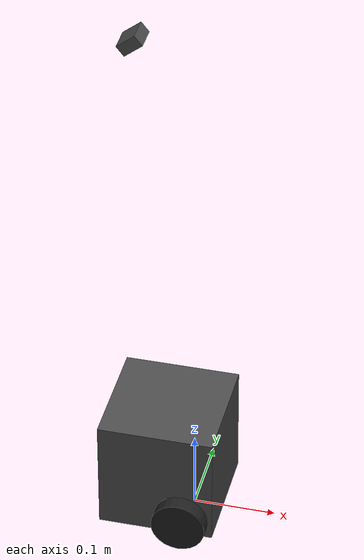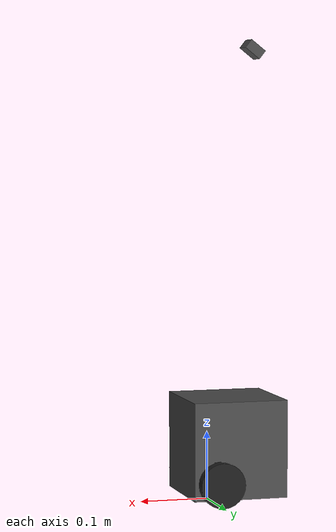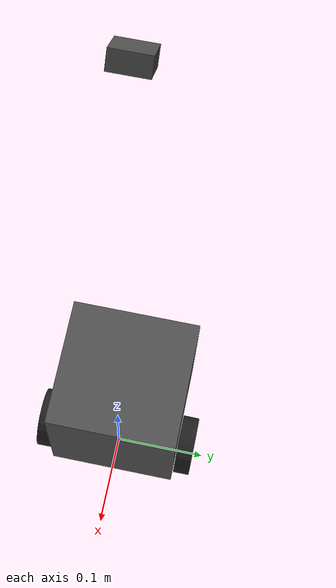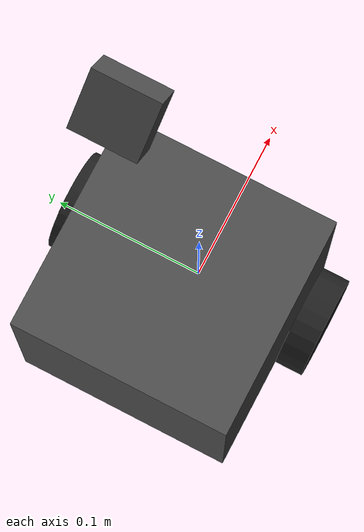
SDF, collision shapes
<sdf version='1.7'>
  <model name='robot'>
    <link name='base_footprint'>
      <inertial>
        <pose>-0.000488 0 0.009976 0 -0 0</pose>
        <mass>0.830735</mass>
        <inertia>
          <ixx>0.00321252</ixx>
          <ixy>-1.22941e-05</ixy>
          <ixz>3.33285e-05</ixz>
          <iyy>0.00315206</iyy>
          <iyz>-5.01209e-06</iyz>
          <izz>0.00303903</izz>
        </inertia>
      </inertial>
      <collision name='base_footprint_fixed_joint_lump__base_link_collision'>
        <pose>-0.032 0 0.08 0 -0 0</pose>
        <geometry>
          <box>
            <size>0.14 0.14 0.143</size>
          </box>
        </geometry>
        <surface>
          <contact>
            <ode/>
          </contact>
          <friction>
            <ode/>
          </friction>
        </surface>
      </collision>
      <collision name='base_footprint_fixed_joint_lump__camera_link_collision_1'>
        <pose>-0.07 0 0.66 0 0.9 0</pose>
        <geometry>
          <box>
            <size>0.015 0.03 0.027</size>
          </box>
        </geometry>
        <surface>
          <contact>
            <ode/>
          </contact>
          <friction>
            <ode/>
          </friction>
        </surface>
      </collision>
      <collision name='base_footprint_fixed_joint_lump__caster_back_link_collision_2'>
        <pose>-0.081 1e-06 0.005 -1.57 0 0</pose>
        <geometry>
          <box>
            <size>0.03 0.009 0.02</size>
          </box>
        </geometry>
        <surface>
          <contact>
            <ode>
              <kp>1e+06</kp>
              <kd>100</kd>
              <max_vel>1</max_vel>
              <min_depth>0.001</min_depth>
            </ode>
          </contact>
          <friction>
            <ode>
              <mu>0.1</mu>
              <mu2>0.1</mu2>
            </ode>
          </friction>
        </surface>
      </collision>
      <visual name='base_footprint_fixed_joint_lump__base_link_visual'>
        <pose>-0.032 0 0.01 0 -0 0</pose>
        <geometry>
          <mesh>
            <scale>0.001 0.001 0.001</scale>
            <uri>model://tb3/bases/burger_base.stl</uri>
          </mesh>
        </geometry>
        <material>
          <script>
            <name>Gazebo/DarkGrey</name>
            <uri>file://media/materials/scripts/gazebo.material</uri>
          </script>
        </material>
      </visual>
      <visual name='base_footprint_fixed_joint_lump__camera_link_visual_1'>
        <pose>-0.07 0 0.66 0 0.9 0</pose>
        <geometry>
          <box>
            <size>0.015 0.03 0.027</size>
          </box>
        </geometry>
      </visual>
      <velocity_decay/>
      <velocity_decay/>
      <sensor name='sensor_name' type='camera'>
        <always_on>0</always_on>
        <update_rate>1</update_rate>
        <camera name='camera_name'>
          <horizontal_fov>1.2</horizontal_fov>
          <image>
            <width>420</width>
            <height>240</height>
            <format>R8G8B8</format>
          </image>
          <clip>
            <near>0.02</near>
            <far>300</far>
          </clip>
          <distortion>
            <k1>0</k1>
            <k2>0</k2>
            <k3>0</k3>
            <p1>0</p1>
            <p2>0</p2>
            <center>0.5 0.5</center>
          </distortion>
        </camera>
        <plugin name='plugin_name' filename='libgazebo_ros_camera.so'>
          <ros>
            <namespace>custom_ns</namespace>
            <argument>image_raw:=custom_img</argument>
            <argument>camera_info:=custom_info</argument>
          </ros>
          <camera_name>custom_camera</camera_name>
          <frame_name>camera_link</frame_name>
          <hack_baseline>0.07</hack_baseline>
        </plugin>
        <pose>-0.07 0 0.66 0 0.9 0</pose>
      </sensor>
      <gravity>1</gravity>
      <velocity_decay/>
    </link>
    <joint name='wheel_l_joint' type='revolute'>
      <pose relative_to='base_footprint'>0 0.08 0.033 -1.57 0 0</pose>
      <parent>base_footprint</parent>
      <child>wheel_l</child>
      <axis>
        <xyz>0 0 1</xyz>
        <limit>
          <lower>-1e+16</lower>
          <upper>1e+16</upper>
        </limit>
        <dynamics>
          <spring_reference>0</spring_reference>
          <spring_stiffness>0</spring_stiffness>
        </dynamics>
      </axis>
    </joint>
    <link name='wheel_l'>
      <pose relative_to='wheel_l_joint'>0 0 0 0 -0 0</pose>
      <inertial>
        <pose>0 0 0 0 -0 0</pose>
        <mass>0.0284989</mass>
        <inertia>
          <ixx>1.11756e-05</ixx>
          <ixy>-4.23698e-11</ixy>
          <ixz>-5.93817e-09</ixz>
          <iyy>1.11924e-05</iyy>
          <iyz>-1.44001e-11</iyz>
          <izz>2.07126e-05</izz>
        </inertia>
      </inertial>
      <collision name='wheel_l_collision'>
        <pose>0 0 0 0 -0 0</pose>
        <geometry>
          <cylinder>
            <length>0.018</length>
            <radius>0.033</radius>
          </cylinder>
        </geometry>
        <surface>
          <contact>
            <ode>
              <kp>500000</kp>
              <kd>10</kd>
              <max_vel>0.1</max_vel>
              <min_depth>0.001</min_depth>
            </ode>
          </contact>
          <friction>
            <ode>
              <mu>0.1</mu>
              <mu2>0.1</mu2>
              <fdir1>1 0 0</fdir1>
            </ode>
          </friction>
        </surface>
      </collision>
      <visual name='wheel_l_visual'>
        <pose>0 0 0 1.57 -0 0</pose>
        <geometry>
          <mesh>
            <scale>0.001 0.001 0.001</scale>
            <uri>model://tb3/wheels/left_tire.stl</uri>
          </mesh>
        </geometry>
        <material>
          <script>
            <name>Gazebo/FlatBlack</name>
            <uri>file://media/materials/scripts/gazebo.material</uri>
          </script>
        </material>
      </visual>
      <gravity>1</gravity>
      <velocity_decay/>
    </link>
    <joint name='wheel_r_joint' type='revolute'>
      <pose relative_to='base_footprint'>0 -0.08 0.033 -1.57 0 0</pose>
      <parent>base_footprint</parent>
      <child>wheel_r</child>
      <axis>
        <xyz>0 0 1</xyz>
        <limit>
          <lower>-1e+16</lower>
          <upper>1e+16</upper>
        </limit>
        <dynamics>
          <spring_reference>0</spring_reference>
          <spring_stiffness>0</spring_stiffness>
        </dynamics>
      </axis>
    </joint>
    <link name='wheel_r'>
      <pose relative_to='wheel_r_joint'>0 0 0 0 -0 0</pose>
      <inertial>
        <pose>0 0 0 0 -0 0</pose>
        <mass>0.0284989</mass>
        <inertia>
          <ixx>1.11756e-05</ixx>
          <ixy>-4.23698e-11</ixy>
          <ixz>-5.93817e-09</ixz>
          <iyy>1.11924e-05</iyy>
          <iyz>-1.44001e-11</iyz>
          <izz>2.07126e-05</izz>
        </inertia>
      </inertial>
      <collision name='wheel_r_collision'>
        <pose>0 0 0 0 -0 0</pose>
        <geometry>
          <cylinder>
            <length>0.018</length>
            <radius>0.033</radius>
          </cylinder>
        </geometry>
        <surface>
          <contact>
            <ode>
              <kp>500000</kp>
              <kd>10</kd>
              <max_vel>0.1</max_vel>
              <min_depth>0.001</min_depth>
            </ode>
          </contact>
          <friction>
            <ode>
              <mu>0.1</mu>
              <mu2>0.1</mu2>
              <fdir1>1 0 0</fdir1>
            </ode>
          </friction>
        </surface>
      </collision>
      <visual name='wheel_r_visual'>
        <pose>0 0 0 1.57 -0 0</pose>
        <geometry>
          <mesh>
            <scale>0.001 0.001 0.001</scale>
            <uri>model://tb3/wheels/right_tire.stl</uri>
          </mesh>
        </geometry>
        <material>
          <script>
            <name>Gazebo/FlatBlack</name>
            <uri>file://media/materials/scripts/gazebo.material</uri>
          </script>
        </material>
      </visual>
      <gravity>1</gravity>
      <velocity_decay/>
    </link>
    <static>0</static>
    <plugin name='joint_states' filename='libgazebo_ros_joint_state_publisher.so'>
      <joint_name>wheel_l_joint</joint_name>
      <joint_name>wheel_r_joint</joint_name>
    </plugin>
    <plugin name='turtlebot3_burger_controller' filename='libgazebo_ros_diff_drive.so'>
      <odometry_frame>odom</odometry_frame>
      <odometrySource>odom</odometrySource>
      <publishOdomTF>1</publishOdomTF>
      <robotBaseFrame>base_footprint</robotBaseFrame>
      <publishWheelTF>0</publishWheelTF>
      <publishTf>1</publishTf>
      <legacyMode>0</legacyMode>
      <update_rate>30</update_rate>
      <left_joint>wheel_l_joint</left_joint>
      <right_joint>wheel_r_joint</right_joint>
      <wheel_separation>0.160</wheel_separation>
      <wheel_diameter>0.066</wheel_diameter>
      <max_wheel_acceleration>1</max_wheel_acceleration>
      <max_wheel_torque>10</max_wheel_torque>
      <rosDebugLevel>na</rosDebugLevel>
      <ros>
        <argument>cmd_vel:=custom_cmd_vel</argument>
        <argument>odom:=custom_odom</argument>
      </ros>
    </plugin>
  </model>
</sdf>
